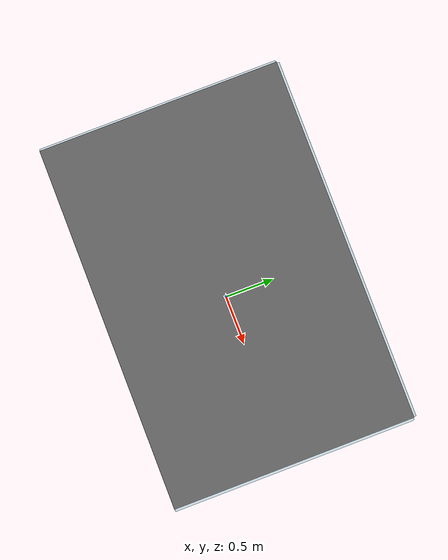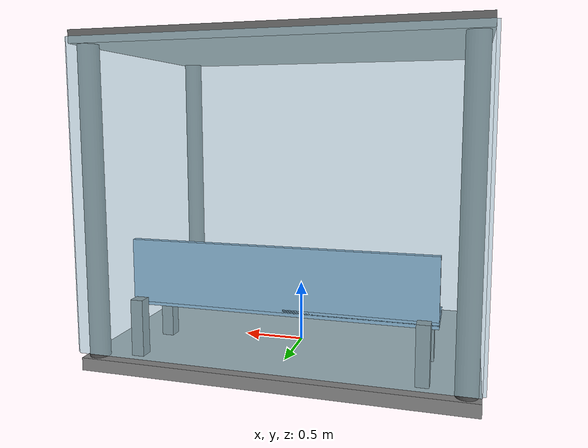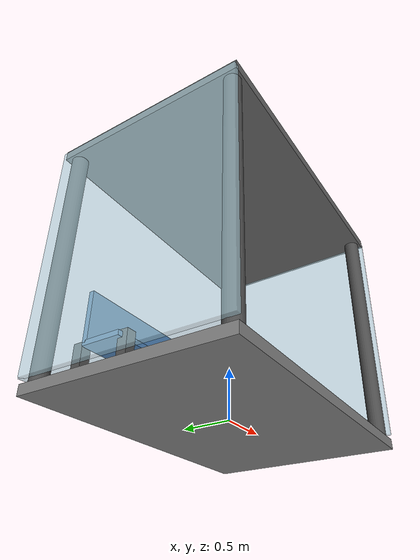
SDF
<?xml version="1.0" ?>
<sdf version="1.6">
  <model name="bus_shelter_template">
    <static>true</static>

    <link name="floor">
      <!-- 바닥 -->
      <collision name="floor_collision">
        <geometry>
          <box>
            <size>3 2 0.1</size>
          </box>
        </geometry>
      </collision>
      <visual name="floor_visual">
        <geometry>
          <box>
            <size>3 2 0.1</size>
          </box>
        </geometry>
        <material>
          <ambient>0.5 0.5 0.5 1</ambient>
          <diffuse>0.5 0.5 0.5 1</diffuse>
          <specular>0.1 0.1 0.1 1</specular>
        </material>
      </visual>
    </link>

    <link name="roof">
      <pose>0 0 2.5 0 0 0</pose>
      <!-- 지붕 -->
      <collision name="roof_collision">
        <geometry>
          <box>
            <size>3 2 0.1</size>
          </box>
        </geometry>
      </collision>
      <visual name="roof_visual">
        <geometry>
          <box>
            <size>3 2 0.1</size>
          </box>
        </geometry>
        <material>
          <ambient>0.4 0.4 0.4 1</ambient>
          <diffuse>0.4 0.4 0.4 1</diffuse>
          <specular>0.2 0.2 0.2 1</specular>
        </material>
      </visual>
    </link>

    <link name="back_wall">
      <pose>0 1 1.3 0 0 0</pose>
      <!-- 뒷벽 (유리) -->
      <collision name="wall_collision">
        <geometry>
          <box>
            <size>3 0.05 2.4</size>
          </box>
        </geometry>
      </collision>
      <visual name="wall_visual">
        <geometry>
          <box>
            <size>3 0.05 2.4</size>
          </box>
        </geometry>
        <material>
          <ambient>0.7 0.85 0.9 0.6</ambient>
          <diffuse>0.7 0.85 0.9 0.6</diffuse>
          <specular>0.9 0.95 1.0 0.8</specular>
          <shader type="vertex">
            <normal_map>__default__</normal_map>
          </shader>
        </material>
      </visual>
    </link>

    <link name="left_wall">
      <pose>-1.5 0 1.3 0 0 0</pose>
      <!-- 왼쪽 유리벽 -->
      <collision name="wall_collision">
        <geometry>
          <box>
            <size>0.05 2 2.4</size>
          </box>
        </geometry>
      </collision>
      <visual name="wall_visual">
        <geometry>
          <box>
            <size>0.05 2 2.4</size>
          </box>
        </geometry>
        <material>
          <ambient>0.7 0.85 0.9 0.6</ambient>
          <diffuse>0.7 0.85 0.9 0.6</diffuse>
          <specular>0.9 0.95 1.0 0.8</specular>
        </material>
      </visual>
    </link>

    <link name="right_wall">
      <pose>1.5 0 1.3 0 0 0</pose>
      <!-- 오른쪽 유리벽 -->
      <collision name="wall_collision">
        <geometry>
          <box>
            <size>0.05 2 2.4</size>
          </box>
        </geometry>
      </collision>
      <visual name="wall_visual">
        <geometry>
          <box>
            <size>0.05 2 2.4</size>
          </box>
        </geometry>
        <material>
          <ambient>0.7 0.85 0.9 0.6</ambient>
          <diffuse>0.7 0.85 0.9 0.6</diffuse>
          <specular>0.9 0.95 1.0 0.8</specular>
        </material>
      </visual>
    </link>

    <link name="bench">
      <pose>0 0.5 0.45 0 0 0</pose>
      <!-- 벤치 좌석 -->
      <collision name="seat_collision">
        <geometry>
          <box>
            <size>2.4 0.4 0.05</size>
          </box>
        </geometry>
      </collision>
      <visual name="seat_visual">
        <geometry>
          <box>
            <size>2.4 0.4 0.05</size>
          </box>
        </geometry>
        <material>
          <ambient>0.3 0.5 0.7 1</ambient>
          <diffuse>0.3 0.5 0.7 1</diffuse>
          <specular>0.2 0.3 0.4 1</specular>
        </material>
      </visual>

      <!-- 벤치 등받이 -->
      <collision name="backrest_collision">
        <pose>0 0.175 0.25 0 0 0</pose>
        <geometry>
          <box>
            <size>2.4 0.05 0.5</size>
          </box>
        </geometry>
      </collision>
      <visual name="backrest_visual">
        <pose>0 0.175 0.25 0 0 0</pose>
        <geometry>
          <box>
            <size>2.4 0.05 0.5</size>
          </box>
        </geometry>
        <material>
          <ambient>0.3 0.5 0.7 1</ambient>
          <diffuse>0.3 0.5 0.7 1</diffuse>
          <specular>0.2 0.3 0.4 1</specular>
        </material>
      </visual>

      <!-- 벤치 다리 (4개) -->
      <visual name="leg_1">
        <pose>-1.1 -0.2 -0.2 0 0 0</pose>
        <geometry>
          <box>
            <size>0.1 0.1 0.5</size>
          </box>
        </geometry>
        <material>
          <ambient>0.3 0.3 0.3 1</ambient>
          <diffuse>0.3 0.3 0.3 1</diffuse>
        </material>
      </visual>

      <visual name="leg_2">
        <pose>1.1 -0.2 -0.2 0 0 0</pose>
        <geometry>
          <box>
            <size>0.1 0.1 0.5</size>
          </box>
        </geometry>
        <material>
          <ambient>0.3 0.3 0.3 1</ambient>
          <diffuse>0.3 0.3 0.3 1</diffuse>
        </material>
      </visual>

      <visual name="leg_3">
        <pose>-1.1 0.3 -0.2 0 0 0</pose>
        <geometry>
          <box>
            <size>0.1 0.1 0.5</size>
          </box>
        </geometry>
        <material>
          <ambient>0.3 0.3 0.3 1</ambient>
          <diffuse>0.3 0.3 0.3 1</diffuse>
        </material>
      </visual>

      <visual name="leg_4">
        <pose>1.1 0.3 -0.2 0 0 0</pose>
        <geometry>
          <box>
            <size>0.1 0.1 0.5</size>
          </box>
        </geometry>
        <material>
          <ambient>0.3 0.3 0.3 1</ambient>
          <diffuse>0.3 0.3 0.3 1</diffuse>
        </material>
      </visual>
    </link>

    <link name="support_columns">
      <!-- 지지 기둥 (4개) -->
      <visual name="column_1">
        <pose>-1.4 0.9 1.25 0 0 0</pose>
        <geometry>
          <cylinder>
            <radius>0.08</radius>
            <length>2.5</length>
          </cylinder>
        </geometry>
        <material>
          <ambient>0.3 0.3 0.3 1</ambient>
          <diffuse>0.3 0.3 0.3 1</diffuse>
          <specular>0.5 0.5 0.5 1</specular>
        </material>
      </visual>

      <visual name="column_2">
        <pose>1.4 0.9 1.25 0 0 0</pose>
        <geometry>
          <cylinder>
            <radius>0.08</radius>
            <length>2.5</length>
          </cylinder>
        </geometry>
        <material>
          <ambient>0.3 0.3 0.3 1</ambient>
          <diffuse>0.3 0.3 0.3 1</diffuse>
          <specular>0.5 0.5 0.5 1</specular>
        </material>
      </visual>

      <visual name="column_3">
        <pose>-1.4 -0.9 1.25 0 0 0</pose>
        <geometry>
          <cylinder>
            <radius>0.08</radius>
            <length>2.5</length>
          </cylinder>
        </geometry>
        <material>
          <ambient>0.3 0.3 0.3 1</ambient>
          <diffuse>0.3 0.3 0.3 1</diffuse>
          <specular>0.5 0.5 0.5 1</specular>
        </material>
      </visual>

      <visual name="column_4">
        <pose>1.4 -0.9 1.25 0 0 0</pose>
        <geometry>
          <cylinder>
            <radius>0.08</radius>
            <length>2.5</length>
          </cylinder>
        </geometry>
        <material>
          <ambient>0.3 0.3 0.3 1</ambient>
          <diffuse>0.3 0.3 0.3 1</diffuse>
          <specular>0.5 0.5 0.5 1</specular>
        </material>
      </visual>
    </link>

  </model>
</sdf>
